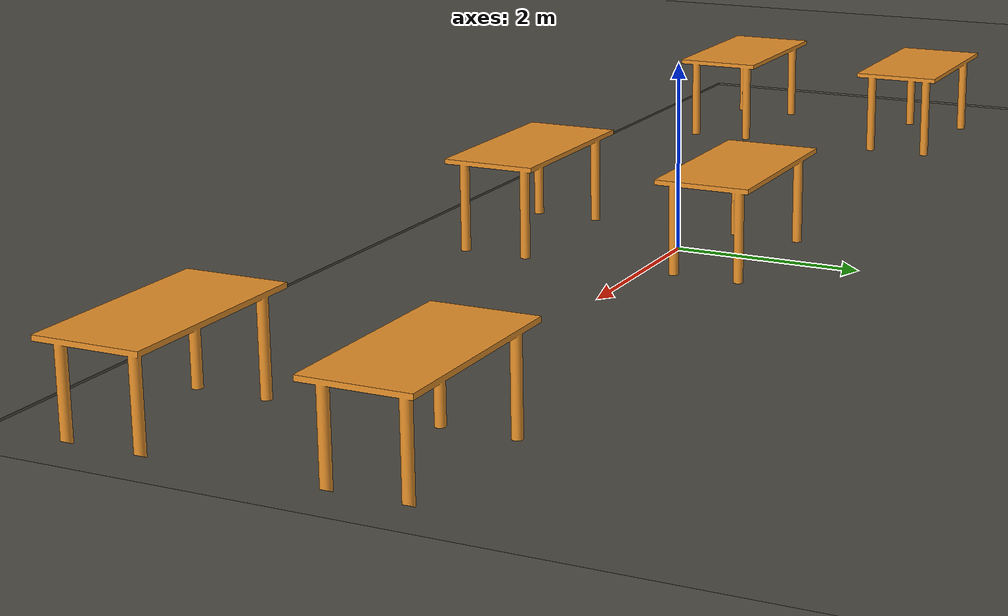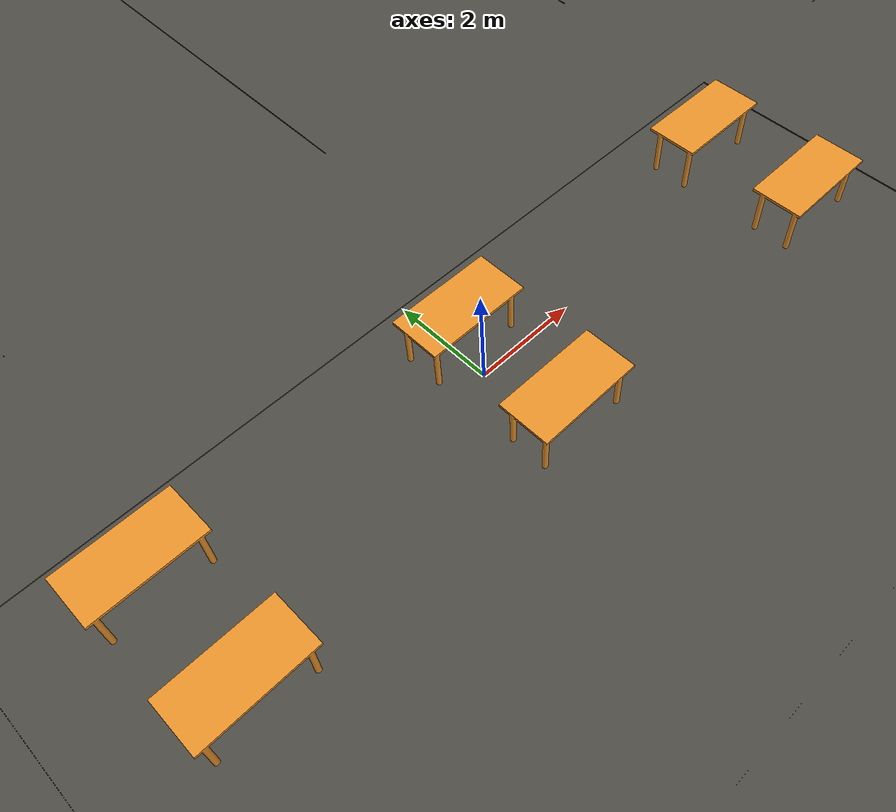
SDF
<?xml version="1.0" ?>
<!-- Floor model: ground surface + work tables -->
<!-- Onshape document_id: 413e77afccf5d41747a34ccc / workspace_id: b5425021473a3ff7e609cc44 -->
<sdf version="1.9">
  <model name="floor">
    <static>true</static>
    <link name="floor">
      <!-- Part table -->
      <visual name="table">
        <pose>6.69 0.76 1.0 0 0 0</pose>
        <geometry>
          <mesh><uri>meshes/mesa.stl</uri></mesh>
        </geometry>
        <material>
          <ambient>0.909804 0.572549 0.164706 1</ambient>
          <diffuse>0.909804 0.572549 0.164706 1</diffuse>
        </material>
      </visual>
      <collision name="table_collision">
        <pose>6.69 0.76 1.0 0 0 0</pose>
        <geometry>
          <mesh><uri>meshes/mesa.stl</uri></mesh>
        </geometry>
      </collision>
      <!-- Part floor_surface -->
      <visual name="floor_visual">
        <pose>-15.3716 -24.9021 0 0 0 0</pose>
        <geometry>
          <mesh><uri>meshes/suelo.stl</uri></mesh>
        </geometry>
        <material>
          <ambient>0.301961 0.290196 0.262745 1</ambient>
          <diffuse>0.301961 0.290196 0.262745 1</diffuse>
        </material>
      </visual>
      <collision name="floor_collision">
        <pose>-15.3716 -24.9021 0 0 0 0</pose>
        <geometry>
          <mesh><uri>meshes/suelo.stl</uri></mesh>
        </geometry>
      </collision>
      <!-- Part table_2 -->
      <visual name="table_2">
        <pose>-6 0.8 1.0 0 0 0</pose>
        <geometry>
          <mesh><uri>meshes/mesa.stl</uri></mesh>
        </geometry>
        <material>
          <ambient>0.909804 0.572549 0.164706 1</ambient>
          <diffuse>0.909804 0.572549 0.164706 1</diffuse>
        </material>
      </visual>
      <collision name="table_2_collision">
        <pose>-6 0.8 1.0 0 0 0</pose>
        <geometry>
          <mesh><uri>meshes/mesa.stl</uri></mesh>
        </geometry>
      </collision>
      <!-- Part table_3 -->
      <visual name="table_3">
        <pose>-5.95 -1.575 1.0 0 0 0</pose>
        <geometry>
          <mesh><uri>meshes/mesa.stl</uri></mesh>
        </geometry>
        <material>
          <ambient>0.909804 0.572549 0.164706 1</ambient>
          <diffuse>0.909804 0.572549 0.164706 1</diffuse>
        </material>
      </visual>
      <collision name="table_3_collision">
        <pose>-5.95 -1.575 1.0 0 0 0</pose>
        <geometry>
          <mesh><uri>meshes/mesa.stl</uri></mesh>
        </geometry>
      </collision>
      <!-- Part table_4 -->
      <visual name="table_4">
        <pose>0.2 0.75 1.0 0 0 0</pose>
        <geometry>
          <mesh><uri>meshes/mesa.stl</uri></mesh>
        </geometry>
        <material>
          <ambient>0.909804 0.572549 0.164706 1</ambient>
          <diffuse>0.909804 0.572549 0.164706 1</diffuse>
        </material>
      </visual>
      <collision name="table_4_collision">
        <pose>0.2 0.75 1.0 0 0 0</pose>
        <geometry>
          <mesh><uri>meshes/mesa.stl</uri></mesh>
        </geometry>
      </collision>
      <!-- Part table_5 -->
      <visual name="table_5">
        <pose>0.27 -1.595 1.0 0 0 0</pose>
        <geometry>
          <mesh><uri>meshes/mesa.stl</uri></mesh>
        </geometry>
        <material>
          <ambient>0.909804 0.572549 0.164706 1</ambient>
          <diffuse>0.909804 0.572549 0.164706 1</diffuse>
        </material>
      </visual>
      <collision name="table_5_collision">
        <pose>0.27 -1.595 1.0 0 0 0</pose>
        <geometry>
          <mesh><uri>meshes/mesa.stl</uri></mesh>
        </geometry>
      </collision>
      <!-- Part table_6 -->
      <visual name="table_6">
        <pose>6.73 -1.585 1.0 0 0 0</pose>
        <geometry>
          <mesh><uri>meshes/mesa.stl</uri></mesh>
        </geometry>
        <material>
          <ambient>0.909804 0.572549 0.164706 1</ambient>
          <diffuse>0.909804 0.572549 0.164706 1</diffuse>
        </material>
      </visual>
      <collision name="table_6_collision">
        <pose>6.73 -1.585 1.0 0 0 0</pose>
        <geometry>
          <mesh><uri>meshes/mesa.stl</uri></mesh>
        </geometry>
      </collision>
    </link>
  </model>
</sdf>
